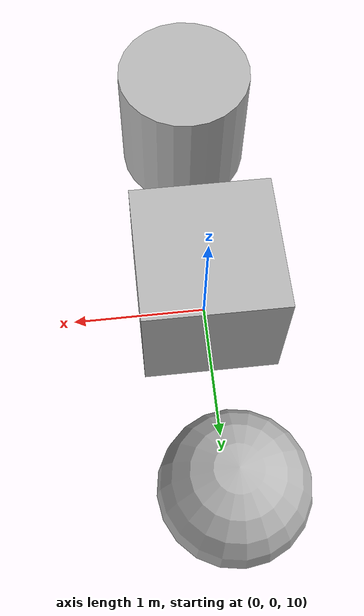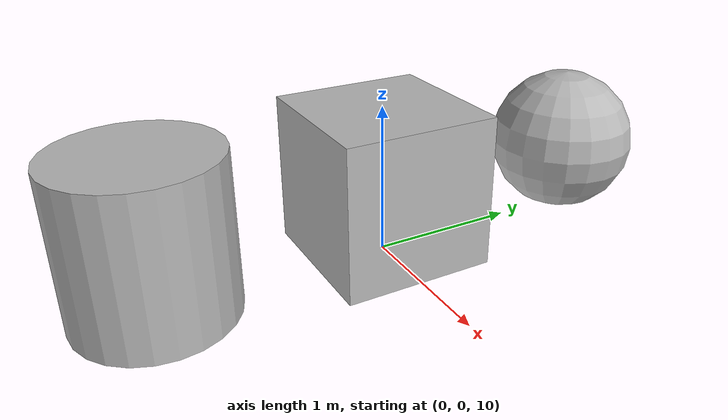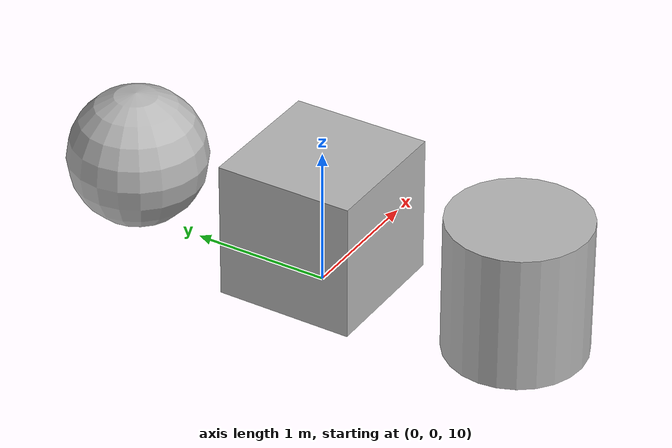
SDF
<?xml version="1.0" ?>
<sdf version="1.3">
  <world name="default">
        <scene>
            <ambient>0.5 0.5 0.5 1</ambient>
            <background>0.5 0.5 0.5 1</background>
            <shadows>false</shadows>
        </scene>
        <include>
            <uri>model://sun</uri>
        </include>
    <physics type="dart">
      <gravity>0 0 -10.0</gravity>
      <ode>
        <solver>
          <type>quick</type>
          <dt>0.001</dt>
          <iters>1000</iters>
          <sor>1.3</sor>
        </solver>
        <constraints>
          <cfm>0.0</cfm>
          <erp>1.0</erp>
          <contact_max_correcting_vel>0.0</contact_max_correcting_vel>
          <contact_surface_layer>0.0</contact_surface_layer>
        </constraints>
      </ode>
    </physics>
    <include><uri>model://ground_plane</uri></include>
    <model name="box">
      <pose>0 0 10.5 0 0 0</pose>
      <allow_auto_disable>false</allow_auto_disable>
      <link name="link">
        <inertial>
          <inertia>
            <ixx>1</ixx>
            <ixy>0</ixy>
            <ixz>0</ixz>
            <iyy>1</iyy>
            <iyz>0</iyz>
            <izz>1</izz>
          </inertia>
          <mass>1.0</mass>
        </inertial>
        <velocity_decay>
          <linear>0.0</linear>
          <angular>0.0</angular>
        </velocity_decay>
        <collision name="collision">
          <geometry>
            <box>
              <size>1 1 1</size>
            </box>
          </geometry>
          <surface>
            <friction>
              <ode>
                <mu>1</mu>
                <mu2>1</mu2>
              </ode>
            </friction>
            <contact>
              <ode>
                <max_vel>0</max_vel>
                <min_depth>0</min_depth>
              </ode>
            </contact>
          </surface>
        </collision>
        <visual name="visual">
          <geometry>
            <box>
              <size>1 1 1</size>
            </box>
          </geometry>
          <material>
            <script>Gazebo/WoodPallet</script>
          </material>
        </visual>
      </link>
    </model>
    <model name="sphere">
      <pose>0 1.5 10.5 0 0 0</pose>
      <allow_auto_disable>false</allow_auto_disable>
      <link name="link">
        <inertial>
          <inertia>
            <ixx>1</ixx>
            <ixy>0</ixy>
            <ixz>0</ixz>
            <iyy>1</iyy>
            <iyz>0</iyz>
            <izz>1</izz>
          </inertia>
          <mass>1.0</mass>
        </inertial>
        <velocity_decay>
          <linear>0.0</linear>
          <angular>0.0</angular>
        </velocity_decay>
        <collision name="collision">
          <geometry>
            <sphere>
              <radius>0.5</radius>
            </sphere>
          </geometry>
          <surface>
            <friction>
              <ode>
                <mu>1</mu>
                <mu2>1</mu2>
              </ode>
            </friction>
            <contact>
              <ode>
                <max_vel>0</max_vel>
                <min_depth>0</min_depth>
              </ode>
            </contact>
          </surface>
        </collision>
        <visual name="visual">
          <geometry>
            <sphere>
              <radius>0.5</radius>
            </sphere>
          </geometry>
          <material>
            <script>Gazebo/WoodPallet</script>
          </material>
        </visual>
      </link>
    </model>
    <model name="cylinder">
      <pose>0 -1.5 10.5 0 0 0</pose>
      <allow_auto_disable>false</allow_auto_disable>
      <link name="link">
        <inertial>
          <inertia>
            <ixx>1</ixx>
            <ixy>0</ixy>
            <ixz>0</ixz>
            <iyy>1</iyy>
            <iyz>0</iyz>
            <izz>1</izz>
          </inertia>
          <mass>1.0</mass>
        </inertial>
        <velocity_decay>
          <linear>0.0</linear>
          <angular>0.0</angular>
        </velocity_decay>
        <collision name="collision">
          <geometry>
            <cylinder>
              <radius>0.5</radius>
              <length>1.0</length>
            </cylinder>
          </geometry>
          <surface>
            <friction>
              <ode>
                <mu>1</mu>
                <mu2>1</mu2>
              </ode>
            </friction>
            <contact>
              <ode>
                <max_vel>0</max_vel>
                <min_depth>0</min_depth>
              </ode>
            </contact>
          </surface>
        </collision>
        <visual name="visual">
          <geometry>
            <cylinder>
              <radius>0.5</radius>
              <length>1.0</length>
            </cylinder>
          </geometry>
          <material>
            <script>Gazebo/WoodPallet</script>
          </material>
        </visual>
      </link>
    </model>
    <light type="directional" name="sun">
      <pose>0 0 10 0 0 0</pose>
      <diffuse>8 .8 .8 1</diffuse>
      <specular>.1 .1 .1 1</specular>
      <attenuation>
        <range>10</range>
        <linear>0.01</linear>
        <constant>0.8</constant>
        <quadratic>0.0</quadratic>
      </attenuation>
      <direction>0 .5 -.5</direction>
      <cast_shadows>true</cast_shadows>
    </light>
  </world>
</sdf>
